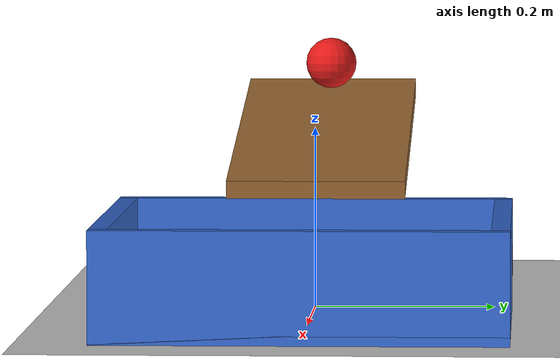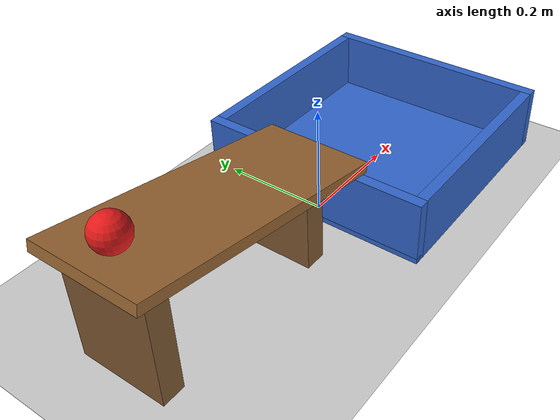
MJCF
<mujoco model="ball_ramp_cup">
  <option timestep="0.002" gravity="0 0 -9.81"/>

  <visual>
    <global offwidth="1280" offheight="720"/>
  </visual>

  <worldbody>
    <light name="sun" pos="0 0 3" dir="0 0 -1" directional="true"/>
    <geom name="floor" type="plane" pos="0 0 0" size="3 3 0.1" rgba="0.8 0.8 0.8 1"/>

    <body name="ramp_body" pos="0 0 0">
      <geom name="ramp" type="box" pos="-0.2479 0 0.1736" euler="0 10 0" size="0.25 0.1 0.01" rgba="0.6 0.4 0.2 1"/>
      <geom name="ramp_support_high" type="box" pos="-0.45 0 0.1" size="0.02 0.08 0.1" rgba="0.5 0.35 0.2 1"/>
      <geom name="ramp_support_low" type="box" pos="-0.12 0 0.075" size="0.02 0.08 0.075" rgba="0.5 0.35 0.2 1"/>
    </body>

    <body name="cup" pos="0.19 0 0">
      <geom name="cup_bottom" type="box" pos="0 0 0.005" size="0.22 0.22 0.005" rgba="0.2 0.4 0.8 1"/>
      <geom name="cup_wall_near" type="box" pos="-0.21 0 0.06" size="0.01 0.22 0.06" rgba="0.2 0.4 0.8 1"/>
      <geom name="cup_wall_far" type="box" pos="0.21 0 0.06" size="0.01 0.22 0.06" rgba="0.2 0.4 0.8 1"/>
      <geom name="cup_wall_left" type="box" pos="0 0.21 0.06" size="0.2 0.01 0.06" rgba="0.2 0.4 0.8 1"/>
      <geom name="cup_wall_right" type="box" pos="0 -0.21 0.06" size="0.2 0.01 0.06" rgba="0.2 0.4 0.8 1"/>
    </body>

    <body name="ball" pos="-0.438 0 0.249">
      <freejoint name="ball_free"/>
      <geom name="ball" type="sphere" size="0.03" density="2000" condim="6" friction="1 0.005 0.002" rgba="0.9 0.1 0.1 1"/>
    </body>
  </worldbody>

  <keyframe>
    <key name="start" qpos="-0.438 0 0.249 1 0 0 0" qvel="0 0 0 0 0 0"/>
  </keyframe>
</mujoco>
